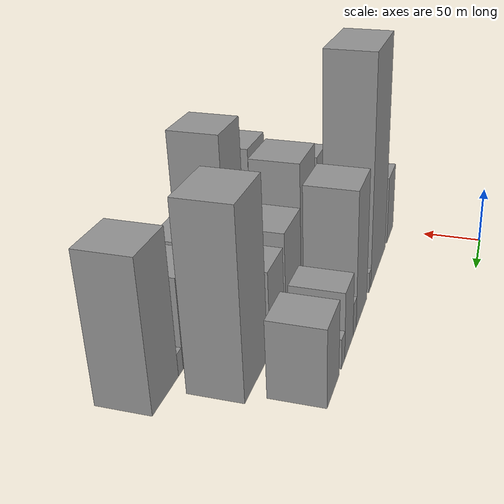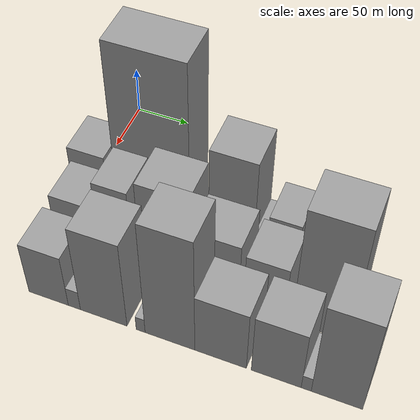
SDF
<sdf version="1.6">
 <world name="default">
  <model name="building_16">
   <static>1</static>
   <pose>100.0000 8.8448 0 0.000000 0.000000 0.000000</pose>
   <link name="link">
    <pose>0 0 31.50 0 0 0</pose>
    <collision name="collision"><geometry><box><size>40.0000 33.9415 63.0000</size></box></geometry></collision>
    <visual name="visual">
     <cast_shadows>0</cast_shadows>
     <geometry><box><size>40.0000 33.9415 63.0000</size></box></geometry>
     <material>
      <script>
       <uri>model://grey_wall/materials/scripts</uri>
       <uri>model://grey_wall/materials/textures</uri>
       <name>vrc/grey_wall</name>
      </script>
     </material>
    </visual>
   </link>
  </model>
  <model name="building_17">
   <static>1</static>
   <pose>100.0000 68.5710 0 0.000000 0.000000 0.000000</pose>
   <link name="link">
    <pose>0 0 96.00 0 0 0</pose>
    <collision name="collision"><geometry><box><size>40.0000 67.5108 192.0000</size></box></geometry></collision>
    <visual name="visual">
     <cast_shadows>0</cast_shadows>
     <geometry><box><size>40.0000 67.5108 192.0000</size></box></geometry>
     <material>
      <script>
       <uri>model://grey_wall/materials/scripts</uri>
       <uri>model://grey_wall/materials/textures</uri>
       <name>vrc/grey_wall</name>
      </script>
     </material>
    </visual>
   </link>
  </model>
  <model name="building_18">
   <static>1</static>
   <pose>100.0000 106.2454 0 0.000000 0.000000 0.000000</pose>
   <link name="link">
    <pose>0 0 9.00 0 0 0</pose>
    <collision name="collision"><geometry><box><size>40.0000 7.8379 18.0000</size></box></geometry></collision>
    <visual name="visual">
     <cast_shadows>0</cast_shadows>
     <geometry><box><size>40.0000 7.8379 18.0000</size></box></geometry>
     <material>
      <script>
       <uri>model://grey_wall/materials/scripts</uri>
       <uri>model://grey_wall/materials/textures</uri>
       <name>vrc/grey_wall</name>
      </script>
     </material>
    </visual>
   </link>
  </model>
  <model name="building_19">
   <static>1</static>
   <pose>100.0000 139.3335 0 0.000000 0.000000 0.000000</pose>
   <link name="link">
    <pose>0 0 55.50 0 0 0</pose>
    <collision name="collision"><geometry><box><size>40.0000 40.3383 111.0000</size></box></geometry></collision>
    <visual name="visual">
     <cast_shadows>0</cast_shadows>
     <geometry><box><size>40.0000 40.3383 111.0000</size></box></geometry>
     <material>
      <script>
       <uri>model://grey_wall/materials/scripts</uri>
       <uri>model://grey_wall/materials/textures</uri>
       <name>vrc/grey_wall</name>
      </script>
     </material>
    </visual>
   </link>
  </model>
  <model name="building_20">
   <static>1</static>
   <pose>100.0000 165.2207 0 0.000000 0.000000 0.000000</pose>
   <link name="link">
    <pose>0 0 13.50 0 0 0</pose>
    <collision name="collision"><geometry><box><size>40.0000 11.4361 27.0000</size></box></geometry></collision>
    <visual name="visual">
     <cast_shadows>0</cast_shadows>
     <geometry><box><size>40.0000 11.4361 27.0000</size></box></geometry>
     <material>
      <script>
       <uri>model://grey_wall/materials/scripts</uri>
       <uri>model://grey_wall/materials/textures</uri>
       <name>vrc/grey_wall</name>
      </script>
     </material>
    </visual>
   </link>
  </model>
  <model name="building_21">
   <static>1</static>
   <pose>100.0000 184.7017 0 0.000000 0.000000 0.000000</pose>
   <link name="link">
    <pose>0 0 27.00 0 0 0</pose>
    <collision name="collision"><geometry><box><size>40.0000 27.5259 54.0000</size></box></geometry></collision>
    <visual name="visual">
     <cast_shadows>0</cast_shadows>
     <geometry><box><size>40.0000 27.5259 54.0000</size></box></geometry>
     <material>
      <script>
       <uri>model://grey_wall/materials/scripts</uri>
       <uri>model://grey_wall/materials/textures</uri>
       <name>vrc/grey_wall</name>
      </script>
     </material>
    </visual>
   </link>
  </model>
  <model name="building_22">
   <static>1</static>
   <pose>100.0000 203.6912 0 0.000000 0.000000 0.000000</pose>
   <link name="link">
    <pose>0 0 12.00 0 0 0</pose>
    <collision name="collision"><geometry><box><size>40.0000 10.4531 24.0000</size></box></geometry></collision>
    <visual name="visual">
     <cast_shadows>0</cast_shadows>
     <geometry><box><size>40.0000 10.4531 24.0000</size></box></geometry>
     <material>
      <script>
       <uri>model://grey_wall/materials/scripts</uri>
       <uri>model://grey_wall/materials/textures</uri>
       <name>vrc/grey_wall</name>
      </script>
     </material>
    </visual>
   </link>
  </model>
  <model name="building_23">
   <static>1</static>
   <pose>100.0000 232.8153 0 0.000000 0.000000 0.000000</pose>
   <link name="link">
    <pose>0 0 30.00 0 0 0</pose>
    <collision name="collision"><geometry><box><size>40.0000 33.7951 60.0000</size></box></geometry></collision>
    <visual name="visual">
     <cast_shadows>0</cast_shadows>
     <geometry><box><size>40.0000 33.7951 60.0000</size></box></geometry>
     <material>
      <script>
       <uri>model://grey_wall/materials/scripts</uri>
       <uri>model://grey_wall/materials/textures</uri>
       <name>vrc/grey_wall</name>
      </script>
     </material>
    </visual>
   </link>
  </model>
  <model name="building_49">
   <static>1</static>
   <pose>152.0000 18.9590 0 0.000000 0.000000 0.000000</pose>
   <link name="link">
    <pose>0 0 31.50 0 0 0</pose>
    <collision name="collision"><geometry><box><size>40.0000 33.0710 63.0000</size></box></geometry></collision>
    <visual name="visual">
     <cast_shadows>0</cast_shadows>
     <geometry><box><size>40.0000 33.0710 63.0000</size></box></geometry>
     <material>
      <script>
       <uri>model://grey_wall/materials/scripts</uri>
       <uri>model://grey_wall/materials/textures</uri>
       <name>vrc/grey_wall</name>
      </script>
     </material>
    </visual>
   </link>
  </model>
  <model name="building_50">
   <static>1</static>
   <pose>152.0000 58.2756 0 0.000000 0.000000 0.000000</pose>
   <link name="link">
    <pose>0 0 48.00 0 0 0</pose>
    <collision name="collision"><geometry><box><size>40.0000 29.5621 96.0000</size></box></geometry></collision>
    <visual name="visual">
     <cast_shadows>0</cast_shadows>
     <geometry><box><size>40.0000 29.5621 96.0000</size></box></geometry>
     <material>
      <script>
       <uri>model://grey_wall/materials/scripts</uri>
       <uri>model://grey_wall/materials/textures</uri>
       <name>vrc/grey_wall</name>
      </script>
     </material>
    </visual>
   </link>
  </model>
  <model name="building_51">
   <static>1</static>
   <pose>152.0000 101.7993 0 0.000000 0.000000 0.000000</pose>
   <link name="link">
    <pose>0 0 55.50 0 0 0</pose>
    <collision name="collision"><geometry><box><size>40.0000 43.4853 111.0000</size></box></geometry></collision>
    <visual name="visual">
     <cast_shadows>0</cast_shadows>
     <geometry><box><size>40.0000 43.4853 111.0000</size></box></geometry>
     <material>
      <script>
       <uri>model://grey_wall/materials/scripts</uri>
       <uri>model://grey_wall/materials/textures</uri>
       <name>vrc/grey_wall</name>
      </script>
     </material>
    </visual>
   </link>
  </model>
  <model name="building_52">
   <static>1</static>
   <pose>152.0000 144.7574 0 0.000000 0.000000 0.000000</pose>
   <link name="link">
    <pose>0 0 37.50 0 0 0</pose>
    <collision name="collision"><geometry><box><size>40.0000 42.4308 75.0000</size></box></geometry></collision>
    <visual name="visual">
     <cast_shadows>0</cast_shadows>
     <geometry><box><size>40.0000 42.4308 75.0000</size></box></geometry>
     <material>
      <script>
       <uri>model://grey_wall/materials/scripts</uri>
       <uri>model://grey_wall/materials/textures</uri>
       <name>vrc/grey_wall</name>
      </script>
     </material>
    </visual>
   </link>
  </model>
  <model name="building_53">
   <static>1</static>
   <pose>152.0000 187.3837 0 0.000000 0.000000 0.000000</pose>
   <link name="link">
    <pose>0 0 33.00 0 0 0</pose>
    <collision name="collision"><geometry><box><size>40.0000 34.8218 66.0000</size></box></geometry></collision>
    <visual name="visual">
     <cast_shadows>0</cast_shadows>
     <geometry><box><size>40.0000 34.8218 66.0000</size></box></geometry>
     <material>
      <script>
       <uri>model://grey_wall/materials/scripts</uri>
       <uri>model://grey_wall/materials/textures</uri>
       <name>vrc/grey_wall</name>
      </script>
     </material>
    </visual>
   </link>
  </model>
  <model name="building_54">
   <static>1</static>
   <pose>152.0000 234.4844 0 0.000000 0.000000 0.000000</pose>
   <link name="link">
    <pose>0 0 70.50 0 0 0</pose>
    <collision name="collision"><geometry><box><size>40.0000 47.3798 141.0000</size></box></geometry></collision>
    <visual name="visual">
     <cast_shadows>0</cast_shadows>
     <geometry><box><size>40.0000 47.3798 141.0000</size></box></geometry>
     <material>
      <script>
       <uri>model://grey_wall/materials/scripts</uri>
       <uri>model://grey_wall/materials/textures</uri>
       <name>vrc/grey_wall</name>
      </script>
     </material>
    </visual>
   </link>
  </model>
  <model name="building_76">
   <static>1</static>
   <pose>204.0000 21.7994 0 0.000000 0.000000 0.000000</pose>
   <link name="link">
    <pose>0 0 31.50 0 0 0</pose>
    <collision name="collision"><geometry><box><size>40.0000 35.6930 63.0000</size></box></geometry></collision>
    <visual name="visual">
     <cast_shadows>0</cast_shadows>
     <geometry><box><size>40.0000 35.6930 63.0000</size></box></geometry>
     <material>
      <script>
       <uri>model://grey_wall/materials/scripts</uri>
       <uri>model://grey_wall/materials/textures</uri>
       <name>vrc/grey_wall</name>
      </script>
     </material>
    </visual>
   </link>
  </model>
  <model name="building_77">
   <static>1</static>
   <pose>204.0000 45.0731 0 0.000000 0.000000 0.000000</pose>
   <link name="link">
    <pose>0 0 12.00 0 0 0</pose>
    <collision name="collision"><geometry><box><size>40.0000 10.8545 24.0000</size></box></geometry></collision>
    <visual name="visual">
     <cast_shadows>0</cast_shadows>
     <geometry><box><size>40.0000 10.8545 24.0000</size></box></geometry>
     <material>
      <script>
       <uri>model://grey_wall/materials/scripts</uri>
       <uri>model://grey_wall/materials/textures</uri>
       <name>vrc/grey_wall</name>
      </script>
     </material>
    </visual>
   </link>
  </model>
  <model name="building_78">
   <static>1</static>
   <pose>204.0000 70.9654 0 0.000000 0.000000 0.000000</pose>
   <link name="link">
    <pose>0 0 52.50 0 0 0</pose>
    <collision name="collision"><geometry><box><size>40.0000 40.9301 105.0000</size></box></geometry></collision>
    <visual name="visual">
     <cast_shadows>0</cast_shadows>
     <geometry><box><size>40.0000 40.9301 105.0000</size></box></geometry>
     <material>
      <script>
       <uri>model://grey_wall/materials/scripts</uri>
       <uri>model://grey_wall/materials/textures</uri>
       <name>vrc/grey_wall</name>
      </script>
     </material>
    </visual>
   </link>
  </model>
  <model name="building_79">
   <static>1</static>
   <pose>204.0000 103.2694 0 0.000000 0.000000 0.000000</pose>
   <link name="link">
    <pose>0 0 9.00 0 0 0</pose>
    <collision name="collision"><geometry><box><size>40.0000 7.6777 18.0000</size></box></geometry></collision>
    <visual name="visual">
     <cast_shadows>0</cast_shadows>
     <geometry><box><size>40.0000 7.6777 18.0000</size></box></geometry>
     <material>
      <script>
       <uri>model://grey_wall/materials/scripts</uri>
       <uri>model://grey_wall/materials/textures</uri>
       <name>vrc/grey_wall</name>
      </script>
     </material>
    </visual>
   </link>
  </model>
  <model name="building_80">
   <static>1</static>
   <pose>204.0000 128.1693 0 0.000000 0.000000 0.000000</pose>
   <link name="link">
    <pose>0 0 69.00 0 0 0</pose>
    <collision name="collision"><geometry><box><size>40.0000 42.1222 138.0000</size></box></geometry></collision>
    <visual name="visual">
     <cast_shadows>0</cast_shadows>
     <geometry><box><size>40.0000 42.1222 138.0000</size></box></geometry>
     <material>
      <script>
       <uri>model://grey_wall/materials/scripts</uri>
       <uri>model://grey_wall/materials/textures</uri>
       <name>vrc/grey_wall</name>
      </script>
     </material>
    </visual>
   </link>
  </model>
  <model name="building_81">
   <static>1</static>
   <pose>204.0000 170.4618 0 0.000000 0.000000 0.000000</pose>
   <link name="link">
    <pose>0 0 36.00 0 0 0</pose>
    <collision name="collision"><geometry><box><size>40.0000 42.4628 72.0000</size></box></geometry></collision>
    <visual name="visual">
     <cast_shadows>0</cast_shadows>
     <geometry><box><size>40.0000 42.4628 72.0000</size></box></geometry>
     <material>
      <script>
       <uri>model://grey_wall/materials/scripts</uri>
       <uri>model://grey_wall/materials/textures</uri>
       <name>vrc/grey_wall</name>
      </script>
     </material>
    </visual>
   </link>
  </model>
  <model name="building_82">
   <static>1</static>
   <pose>204.0000 215.6408 0 0.000000 0.000000 0.000000</pose>
   <link name="link">
    <pose>0 0 36.00 0 0 0</pose>
    <collision name="collision"><geometry><box><size>40.0000 39.8951 72.0000</size></box></geometry></collision>
    <visual name="visual">
     <cast_shadows>0</cast_shadows>
     <geometry><box><size>40.0000 39.8951 72.0000</size></box></geometry>
     <material>
      <script>
       <uri>model://grey_wall/materials/scripts</uri>
       <uri>model://grey_wall/materials/textures</uri>
       <name>vrc/grey_wall</name>
      </script>
     </material>
    </visual>
   </link>
  </model>
  <model name="building_83">
   <static>1</static>
   <pose>204.0000 239.5411 0 0.000000 0.000000 0.000000</pose>
   <link name="link">
    <pose>0 0 9.00 0 0 0</pose>
    <collision name="collision"><geometry><box><size>40.0000 7.9054 18.0000</size></box></geometry></collision>
    <visual name="visual">
     <cast_shadows>0</cast_shadows>
     <geometry><box><size>40.0000 7.9054 18.0000</size></box></geometry>
     <material>
      <script>
       <uri>model://grey_wall/materials/scripts</uri>
       <uri>model://grey_wall/materials/textures</uri>
       <name>vrc/grey_wall</name>
      </script>
     </material>
    </visual>
   </link>
  </model>
  <model name="building_84">
   <static>1</static>
   <pose>204.0000 263.4127 0 0.000000 0.000000 0.000000</pose>
   <link name="link">
    <pose>0 0 57.00 0 0 0</pose>
    <collision name="collision"><geometry><box><size>40.0000 39.8379 114.0000</size></box></geometry></collision>
    <visual name="visual">
     <cast_shadows>0</cast_shadows>
     <geometry><box><size>40.0000 39.8379 114.0000</size></box></geometry>
     <material>
      <script>
       <uri>model://grey_wall/materials/scripts</uri>
       <uri>model://grey_wall/materials/textures</uri>
       <name>vrc/grey_wall</name>
      </script>
     </material>
    </visual>
   </link>
  </model>
 </world>
</sdf>
